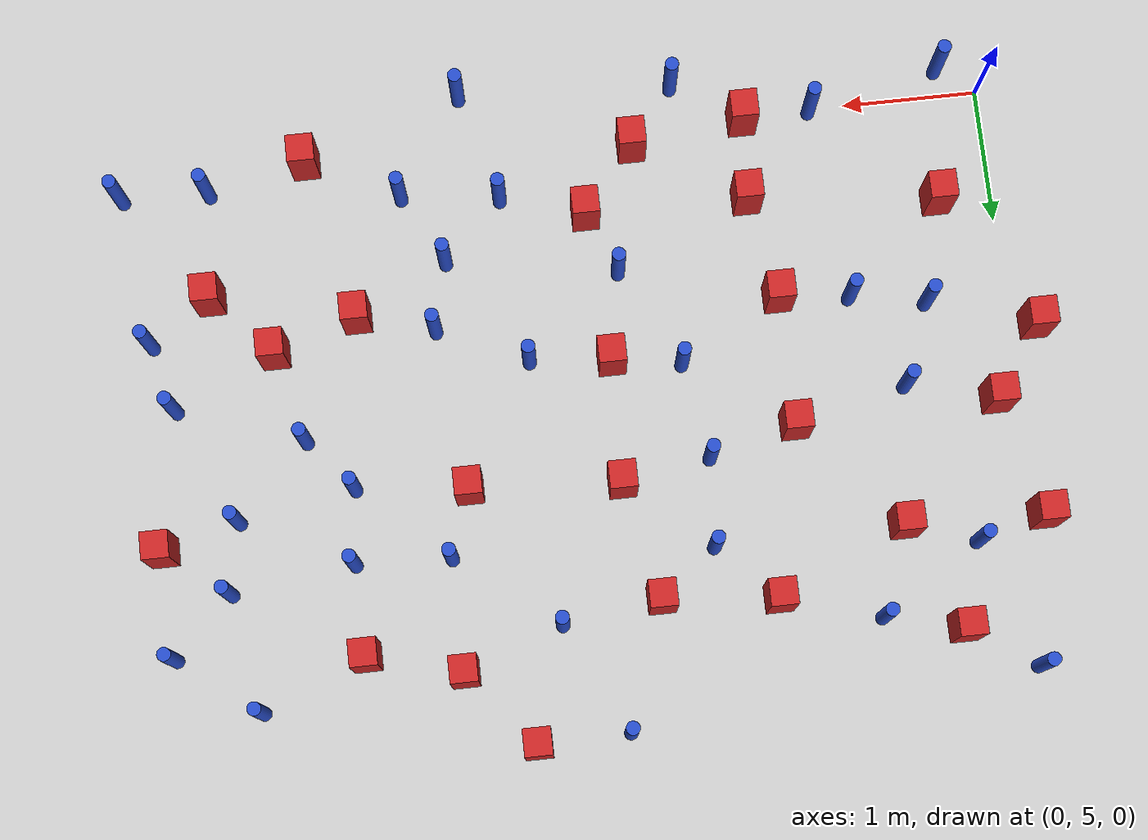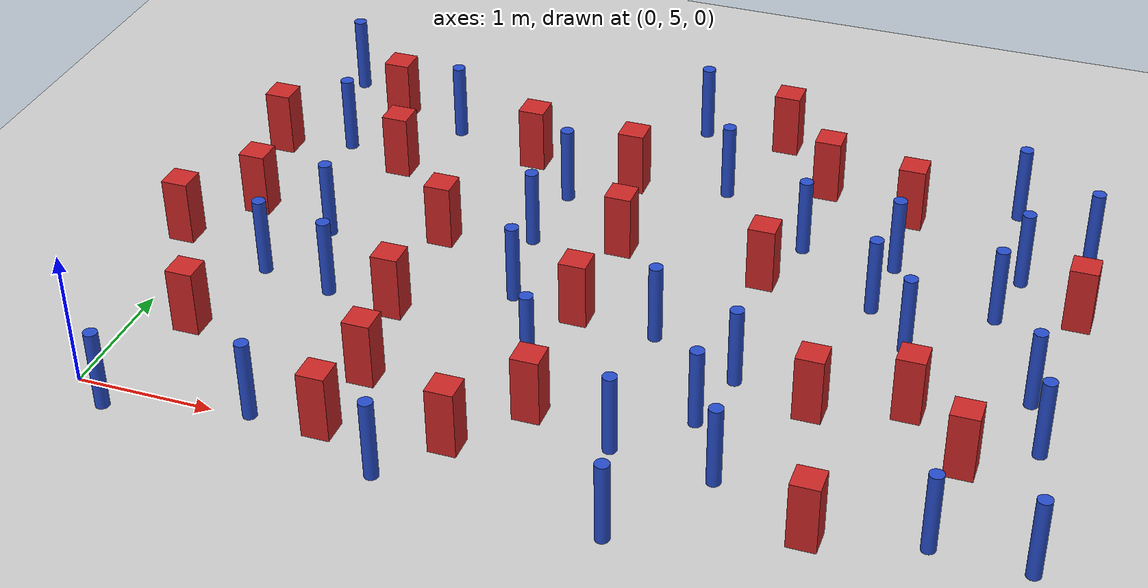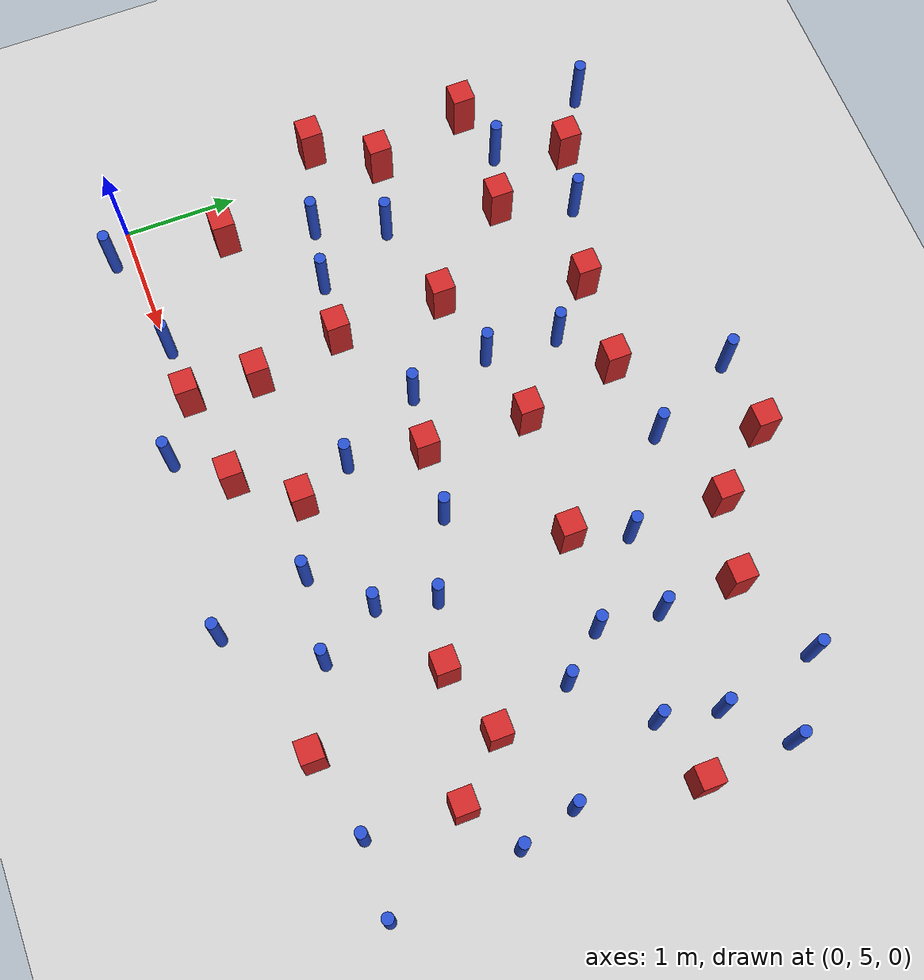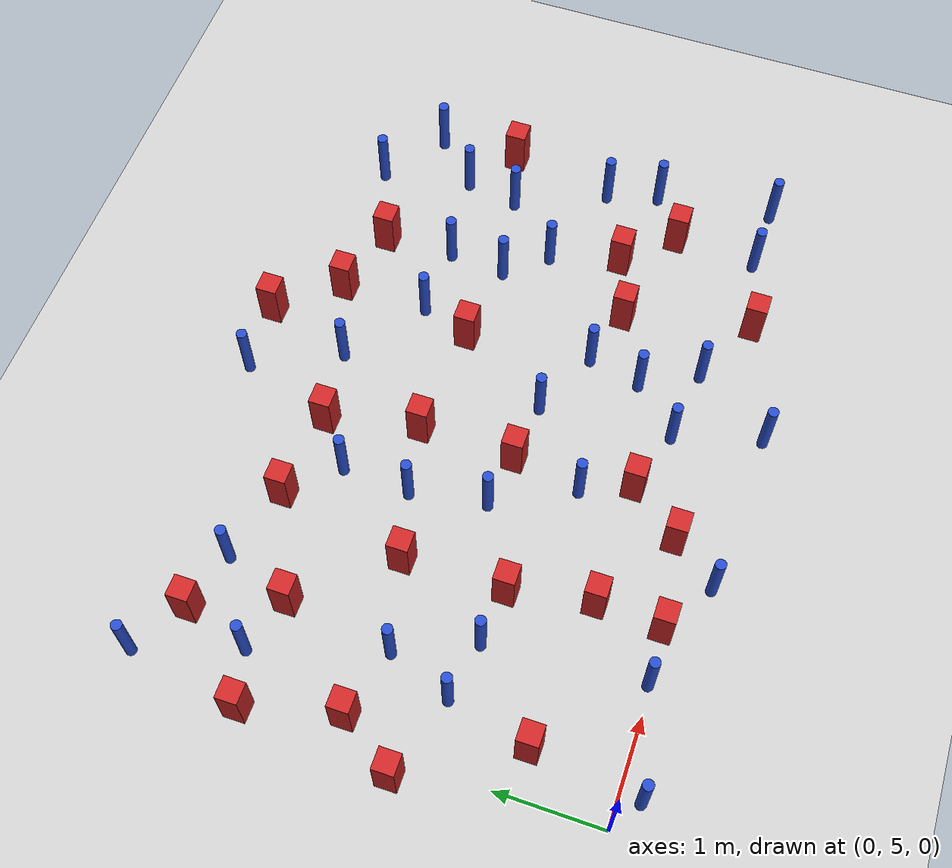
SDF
<sdf version="1.6">
 <world name="default">
  <model name="ground_plane">
   <static>1</static>
   <link name="link">
    <collision name="collision">
     <geometry><plane><normal>0 0 1</normal><size>100 100</size></plane></geometry>
     <surface><friction><ode><mu>100</mu><mu2>50</mu2></ode></friction></surface>
    </collision>
    <visual name="visual">
     <cast_shadows>0</cast_shadows>
     <geometry><plane><normal>0 0 1</normal><size>100 100</size></plane></geometry>
     <material>
      <ambient>1.0 1.0 1.0 1.0</ambient>
      <diffuse>0.8 0.8 0.8 1.0</diffuse>
      <specular>0.01 0.01 0.01 1.000000</specular>
     </material>
    </visual>
   </link>
  </model>
  <model name="square_post_obstacle3">
   <static>true</static>
   <pose>1.82077374307 5.66131599917 8.22691968438e-08 7.2212513382e-06 -7.54495500217e-07 2.29674213826e-05</pose>
   <link name="link">
    <pose>0 0 0.25 0 -0 0</pose>
    <inertial>
     <mass>100</mass>
     <inertia>
      <ixx>0.166667</ixx>
      <ixy>0</ixy>
      <ixz>0</ixz>
      <iyy>0.166667</iyy>
      <iyz>0</iyz>
      <izz>0.166667</izz>
     </inertia>
    </inertial>
    <collision name="collision"><geometry><box><size>.2 .2 .5</size></box></geometry></collision>
    <visual name="visual">
     <geometry><box><size>.2 .2 .5</size></box></geometry>
     <material>
      <script><name>Gazebo/Red</name><uri>file://media/materials/scripts/gazebo.material</uri></script>
     </material>
    </visual>
   </link>
  </model>
  <model name="pole_obstacle12">
   <static>true</static>
   <pose>2.28259964185 4.73559105646 2.88873142074e-08 -9.90536689859e-09 4.60219948989e-07 -1.20965994961e-07</pose>
   <link name="link">
    <pose>0 0 0.3 0 -0 0</pose>
    <inertial>
     <mass>1</mass>
     <inertia><ixx>0.145833</ixx><ixy>0</ixy><ixz>0</ixz><iyy>0.145833</iyy><iyz>0</iyz><izz>0.125</izz></inertia>
    </inertial>
    <collision name="collision">
     <geometry><cylinder><radius>0.05</radius><length>.6</length></cylinder></geometry>
    </collision>
    <visual name="visual">
     <geometry><cylinder><radius>0.05</radius><length>.6</length></cylinder></geometry>
     <material>
      <script><name>Gazebo/Blue</name><uri>file://media/materials/scripts/gazebo.material</uri></script>
     </material>
    </visual>
   </link>
  </model>
  <model name="square_post_obstacle8">
   <static>true</static>
   <pose>1.7828839494 5.05060380891 8.22691968438e-08 7.2212513382e-06 -7.54495500217e-07 2.29674213826e-05</pose>
   <link name="link">
    <pose>0 0 0.25 0 -0 0</pose>
    <inertial>
     <mass>100</mass>
     <inertia>
      <ixx>0.166667</ixx>
      <ixy>0</ixy>
      <ixz>0</ixz>
      <iyy>0.166667</iyy>
      <iyz>0</iyz>
      <izz>0.166667</izz>
     </inertia>
    </inertial>
    <collision name="collision"><geometry><box><size>.2 .2 .5</size></box></geometry></collision>
    <visual name="visual">
     <geometry><box><size>.2 .2 .5</size></box></geometry>
     <material>
      <script><name>Gazebo/Red</name><uri>file://media/materials/scripts/gazebo.material</uri></script>
     </material>
    </visual>
   </link>
  </model>
  <model name="pole_obstacle17">
   <static>true</static>
   <pose>0.289858138714 4.8147940718 2.88873142074e-08 -9.90536689592e-09 4.60219948995e-07 -1.20965994956e-07</pose>
   <link name="link">
    <pose>0 0 0.3 0 -0 0</pose>
    <inertial>
     <mass>1</mass>
     <inertia><ixx>0.145833</ixx><ixy>0</ixy><ixz>0</ixz><iyy>0.145833</iyy><iyz>0</iyz><izz>0.125</izz></inertia>
    </inertial>
    <collision name="collision">
     <geometry><cylinder><radius>0.05</radius><length>.6</length></cylinder></geometry>
    </collision>
    <visual name="visual">
     <geometry><cylinder><radius>0.05</radius><length>.6</length></cylinder></geometry>
     <material>
      <script><name>Gazebo/Blue</name><uri>file://media/materials/scripts/gazebo.material</uri></script>
     </material>
    </visual>
   </link>
  </model>
  <model name="pole_obstacle25">
   <static>true</static>
   <pose>4.3619809951 5.37971459216 2.88873142074e-08 -9.90536690842e-09 4.60219948965e-07 -1.20965994976e-07</pose>
   <link name="link">
    <pose>0 0 0.3 0 -0 0</pose>
    <inertial>
     <mass>1</mass>
     <inertia><ixx>0.145833</ixx><ixy>0</ixy><ixz>0</ixz><iyy>0.145833</iyy><iyz>0</iyz><izz>0.125</izz></inertia>
    </inertial>
    <collision name="collision">
     <geometry><cylinder><radius>0.05</radius><length>.6</length></cylinder></geometry>
    </collision>
    <visual name="visual">
     <geometry><cylinder><radius>0.05</radius><length>.6</length></cylinder></geometry>
     <material>
      <script><name>Gazebo/Blue</name><uri>file://media/materials/scripts/gazebo.material</uri></script>
     </material>
    </visual>
   </link>
  </model>
  <model name="pole_obstacle26">
   <static>true</static>
   <pose>2.43557641112 6.85372961977 2.88873142074e-08 -9.90536689859e-09 4.60219948989e-07 -1.20965994961e-07</pose>
   <link name="link">
    <pose>0 0 0.3 0 -0 0</pose>
    <inertial>
     <mass>1</mass>
     <inertia><ixx>0.145833</ixx><ixy>0</ixy><ixz>0</ixz><iyy>0.145833</iyy><iyz>0</iyz><izz>0.125</izz></inertia>
    </inertial>
    <collision name="collision">
     <geometry><cylinder><radius>0.05</radius><length>.6</length></cylinder></geometry>
    </collision>
    <visual name="visual">
     <geometry><cylinder><radius>0.05</radius><length>.6</length></cylinder></geometry>
     <material>
      <script><name>Gazebo/Blue</name><uri>file://media/materials/scripts/gazebo.material</uri></script>
     </material>
    </visual>
   </link>
  </model>
  <model name="square_post_obstacle26">
   <static>true</static>
   <pose>-0.16919677397 6.82453073051 8.22691968438e-08 7.22125133819e-06 -7.54495500217e-07 2.29674213826e-05</pose>
   <link name="link">
    <pose>0 0 0.25 0 -0 0</pose>
    <inertial>
     <mass>100</mass>
     <inertia>
      <ixx>0.166667</ixx>
      <ixy>0</ixy>
      <ixz>0</ixz>
      <iyy>0.166667</iyy>
      <iyz>0</iyz>
      <izz>0.166667</izz>
     </inertia>
    </inertial>
    <collision name="collision"><geometry><box><size>.2 .2 .5</size></box></geometry></collision>
    <visual name="visual">
     <geometry><box><size>.2 .2 .5</size></box></geometry>
     <material>
      <script><name>Gazebo/Red</name><uri>file://media/materials/scripts/gazebo.material</uri></script>
     </material>
    </visual>
   </link>
  </model>
  <model name="square_post_obstacle27">
   <static>true</static>
   <pose>-0.0322650848351 8.22981169189 8.22691968438e-08 7.22125133819e-06 -7.54495500217e-07 2.29674213826e-05</pose>
   <link name="link">
    <pose>0 0 0.25 0 -0 0</pose>
    <inertial>
     <mass>100</mass>
     <inertia>
      <ixx>0.166667</ixx>
      <ixy>0</ixy>
      <ixz>0</ixz>
      <iyy>0.166667</iyy>
      <iyz>0</iyz>
      <izz>0.166667</izz>
     </inertia>
    </inertial>
    <collision name="collision"><geometry><box><size>.2 .2 .5</size></box></geometry></collision>
    <visual name="visual">
     <geometry><box><size>.2 .2 .5</size></box></geometry>
     <material>
      <script><name>Gazebo/Red</name><uri>file://media/materials/scripts/gazebo.material</uri></script>
     </material>
    </visual>
   </link>
  </model>
  <model name="pole_obstacle37">
   <static>true</static>
   <pose>3.09776641111 9.47160394586 2.88873142074e-08 -9.90536692318e-09 4.6021994893e-07 -1.20965994988e-07</pose>
   <link name="link">
    <pose>0 0 0.3 0 -0 0</pose>
    <inertial>
     <mass>1</mass>
     <inertia><ixx>0.145833</ixx><ixy>0</ixy><ixz>0</ixz><iyy>0.145833</iyy><iyz>0</iyz><izz>0.125</izz></inertia>
    </inertial>
    <collision name="collision">
     <geometry><cylinder><radius>0.05</radius><length>.6</length></cylinder></geometry>
    </collision>
    <visual name="visual">
     <geometry><cylinder><radius>0.05</radius><length>.6</length></cylinder></geometry>
     <material>
      <script><name>Gazebo/Blue</name><uri>file://media/materials/scripts/gazebo.material</uri></script>
     </material>
    </visual>
   </link>
  </model>
  <model name="pole_obstacle45">
   <static>true</static>
   <pose>2.82369901058 6.1157636126 2.88873142074e-08 -9.90536689859e-09 4.60219948989e-07 -1.20965994961e-07</pose>
   <link name="link">
    <pose>0 0 0.3 0 -0 0</pose>
    <inertial>
     <mass>1</mass>
     <inertia><ixx>0.145833</ixx><ixy>0</ixy><ixz>0</ixz><iyy>0.145833</iyy><iyz>0</iyz><izz>0.125</izz></inertia>
    </inertial>
    <collision name="collision">
     <geometry><cylinder><radius>0.05</radius><length>.6</length></cylinder></geometry>
    </collision>
    <visual name="visual">
     <geometry><cylinder><radius>0.05</radius><length>.6</length></cylinder></geometry>
     <material>
      <script><name>Gazebo/Blue</name><uri>file://media/materials/scripts/gazebo.material</uri></script>
     </material>
    </visual>
   </link>
  </model>
  <model name="pole_obstacle48">
   <static>true</static>
   <pose>0.463404609247 8.37738642801 2.88873142074e-08 -9.90536690577e-09 4.60219948971e-07 -1.20965994972e-07</pose>
   <link name="link">
    <pose>0 0 0.3 0 -0 0</pose>
    <inertial>
     <mass>1</mass>
     <inertia><ixx>0.145833</ixx><ixy>0</ixy><ixz>0</ixz><iyy>0.145833</iyy><iyz>0</iyz><izz>0.125</izz></inertia>
    </inertial>
    <collision name="collision">
     <geometry><cylinder><radius>0.05</radius><length>.6</length></cylinder></geometry>
    </collision>
    <visual name="visual">
     <geometry><cylinder><radius>0.05</radius><length>.6</length></cylinder></geometry>
     <material>
      <script><name>Gazebo/Blue</name><uri>file://media/materials/scripts/gazebo.material</uri></script>
     </material>
    </visual>
   </link>
  </model>
  <model name="square_post_obstacle44">
   <static>true</static>
   <pose>4.91162116336 8.7408284496 8.22691968438e-08 7.22125133819e-06 -7.54495500217e-07 2.29674213826e-05</pose>
   <link name="link">
    <pose>0 0 0.25 0 -0 0</pose>
    <inertial>
     <mass>100</mass>
     <inertia>
      <ixx>0.166667</ixx>
      <ixy>0</ixy>
      <ixz>0</ixz>
      <iyy>0.166667</iyy>
      <iyz>0</iyz>
      <izz>0.166667</izz>
     </inertia>
    </inertial>
    <collision name="collision"><geometry><box><size>.2 .2 .5</size></box></geometry></collision>
    <visual name="visual">
     <geometry><box><size>.2 .2 .5</size></box></geometry>
     <material>
      <script><name>Gazebo/Red</name><uri>file://media/materials/scripts/gazebo.material</uri></script>
     </material>
    </visual>
   </link>
  </model>
  <model name="pole_obstacle59">
   <static>true</static>
   <pose>5.74285841394 7.68002146907 2.88873142074e-08 -9.90536690842e-09 4.60219948965e-07 -1.20965994976e-07</pose>
   <link name="link">
    <pose>0 0 0.3 0 -0 0</pose>
    <inertial>
     <mass>1</mass>
     <inertia><ixx>0.145833</ixx><ixy>0</ixy><ixz>0</ixz><iyy>0.145833</iyy><iyz>0</iyz><izz>0.125</izz></inertia>
    </inertial>
    <collision name="collision">
     <geometry><cylinder><radius>0.05</radius><length>.6</length></cylinder></geometry>
    </collision>
    <visual name="visual">
     <geometry><cylinder><radius>0.05</radius><length>.6</length></cylinder></geometry>
     <material>
      <script><name>Gazebo/Blue</name><uri>file://media/materials/scripts/gazebo.material</uri></script>
     </material>
    </visual>
   </link>
  </model>
  <model name="square_post_obstacle50">
   <static>true</static>
   <pose>0.420360315031 5.81374325096 8.22691968438e-08 7.2212513382e-06 -7.54495500217e-07 2.29674213826e-05</pose>
   <link name="link">
    <pose>0 0 0.25 0 -0 0</pose>
    <inertial>
     <mass>100</mass>
     <inertia>
      <ixx>0.166667</ixx>
      <ixy>0</ixy>
      <ixz>0</ixz>
      <iyy>0.166667</iyy>
      <iyz>0</iyz>
      <izz>0.166667</izz>
     </inertia>
    </inertial>
    <collision name="collision"><geometry><box><size>.2 .2 .5</size></box></geometry></collision>
    <visual name="visual">
     <geometry><box><size>.2 .2 .5</size></box></geometry>
     <material>
      <script><name>Gazebo/Red</name><uri>file://media/materials/scripts/gazebo.material</uri></script>
     </material>
    </visual>
   </link>
  </model>
  <model name="square_post_obstacle57">
   <static>true</static>
   <pose>5.82065336989 6.00877035297 8.22691968438e-08 7.2212513382e-06 -7.54495500217e-07 2.29674213826e-05</pose>
   <link name="link">
    <pose>0 0 0.25 0 -0 0</pose>
    <inertial>
     <mass>100</mass>
     <inertia>
      <ixx>0.166667</ixx>
      <ixy>0</ixy>
      <ixz>0</ixz>
      <iyy>0.166667</iyy>
      <iyz>0</iyz>
      <izz>0.166667</izz>
     </inertia>
    </inertial>
    <collision name="collision"><geometry><box><size>.2 .2 .5</size></box></geometry></collision>
    <visual name="visual">
     <geometry><box><size>.2 .2 .5</size></box></geometry>
     <material>
      <script><name>Gazebo/Red</name><uri>file://media/materials/scripts/gazebo.material</uri></script>
     </material>
    </visual>
   </link>
  </model>
  <model name="square_post_obstacle61">
   <static>true</static>
   <pose>1.67341535699 7.39044430447 8.22691968438e-08 7.2212513382e-06 -7.54495500217e-07 2.29674213826e-05</pose>
   <link name="link">
    <pose>0 0 0.25 0 -0 0</pose>
    <inertial>
     <mass>100</mass>
     <inertia>
      <ixx>0.166667</ixx>
      <ixy>0</ixy>
      <ixz>0</ixz>
      <iyy>0.166667</iyy>
      <iyz>0</iyz>
      <izz>0.166667</izz>
     </inertia>
    </inertial>
    <collision name="collision"><geometry><box><size>.2 .2 .5</size></box></geometry></collision>
    <visual name="visual">
     <geometry><box><size>.2 .2 .5</size></box></geometry>
     <material>
      <script><name>Gazebo/Red</name><uri>file://media/materials/scripts/gazebo.material</uri></script>
     </material>
    </visual>
   </link>
  </model>
  <model name="square_post_obstacle64">
   <static>true</static>
   <pose>1.68036831569 6.42983674142 8.22691968438e-08 7.2212513382e-06 -7.54495500217e-07 2.29674213826e-05</pose>
   <link name="link">
    <pose>0 0 0.25 0 -0 0</pose>
    <inertial>
     <mass>100</mass>
     <inertia>
      <ixx>0.166667</ixx>
      <ixy>0</ixy>
      <ixz>0</ixz>
      <iyy>0.166667</iyy>
      <iyz>0</iyz>
      <izz>0.166667</izz>
     </inertia>
    </inertial>
    <collision name="collision"><geometry><box><size>.2 .2 .5</size></box></geometry></collision>
    <visual name="visual">
     <geometry><box><size>.2 .2 .5</size></box></geometry>
     <material>
      <script><name>Gazebo/Red</name><uri>file://media/materials/scripts/gazebo.material</uri></script>
     </material>
    </visual>
   </link>
  </model>
  <model name="pole_obstacle77">
   <static>true</static>
   <pose>5.21128335638 7.14167237031 2.88873142074e-08 -9.90536690842e-09 4.60219948965e-07 -1.20965994976e-07</pose>
   <link name="link">
    <pose>0 0 0.3 0 -0 0</pose>
    <inertial>
     <mass>1</mass>
     <inertia><ixx>0.145833</ixx><ixy>0</ixy><ixz>0</ixz><iyy>0.145833</iyy><iyz>0</iyz><izz>0.125</izz></inertia>
    </inertial>
    <collision name="collision">
     <geometry><cylinder><radius>0.05</radius><length>.6</length></cylinder></geometry>
    </collision>
    <visual name="visual">
     <geometry><cylinder><radius>0.05</radius><length>.6</length></cylinder></geometry>
     <material>
      <script><name>Gazebo/Blue</name><uri>file://media/materials/scripts/gazebo.material</uri></script>
     </material>
    </visual>
   </link>
  </model>
  <model name="pole_obstacle79">
   <static>true</static>
   <pose>3.54056623691 6.71663281864 2.88873142074e-08 -9.90536689859e-09 4.60219948989e-07 -1.20965994961e-07</pose>
   <link name="link">
    <pose>0 0 0.3 0 -0 0</pose>
    <inertial>
     <mass>1</mass>
     <inertia><ixx>0.145833</ixx><ixy>0</ixy><ixz>0</ixz><iyy>0.145833</iyy><iyz>0</iyz><izz>0.125</izz></inertia>
    </inertial>
    <collision name="collision">
     <geometry><cylinder><radius>0.05</radius><length>.6</length></cylinder></geometry>
    </collision>
    <visual name="visual">
     <geometry><cylinder><radius>0.05</radius><length>.6</length></cylinder></geometry>
     <material>
      <script><name>Gazebo/Blue</name><uri>file://media/materials/scripts/gazebo.material</uri></script>
     </material>
    </visual>
   </link>
  </model>
  <model name="pole_obstacle81">
   <static>true</static>
   <pose>4.88968393621 7.52551218049 2.88873142074e-08 -9.90536690842e-09 4.60219948965e-07 -1.20965994976e-07</pose>
   <link name="link">
    <pose>0 0 0.3 0 -0 0</pose>
    <inertial>
     <mass>1</mass>
     <inertia><ixx>0.145833</ixx><ixy>0</ixy><ixz>0</ixz><iyy>0.145833</iyy><iyz>0</iyz><izz>0.125</izz></inertia>
    </inertial>
    <collision name="collision">
     <geometry><cylinder><radius>0.05</radius><length>.6</length></cylinder></geometry>
    </collision>
    <visual name="visual">
     <geometry><cylinder><radius>0.05</radius><length>.6</length></cylinder></geometry>
     <material>
      <script><name>Gazebo/Blue</name><uri>file://media/materials/scripts/gazebo.material</uri></script>
     </material>
    </visual>
   </link>
  </model>
  <model name="pole_obstacle88">
   <static>true</static>
   <pose>4.24070013737 8.10362296016 2.88873142074e-08 -9.9053668967e-09 4.60219948993e-07 -1.20965994957e-07</pose>
   <link name="link">
    <pose>0 0 0.3 0 -0 0</pose>
    <inertial>
     <mass>1</mass>
     <inertia><ixx>0.145833</ixx><ixy>0</ixy><ixz>0</ixz><iyy>0.145833</iyy><iyz>0</iyz><izz>0.125</izz></inertia>
    </inertial>
    <collision name="collision">
     <geometry><cylinder><radius>0.05</radius><length>.6</length></cylinder></geometry>
    </collision>
    <visual name="visual">
     <geometry><cylinder><radius>0.05</radius><length>.6</length></cylinder></geometry>
     <material>
      <script><name>Gazebo/Blue</name><uri>file://media/materials/scripts/gazebo.material</uri></script>
     </material>
    </visual>
   </link>
  </model>
  <model name="square_post_obstacle76">
   <static>true</static>
   <pose>0.190632733114 7.34963433022 8.22691968438e-08 7.2212513382e-06 -7.54495500217e-07 2.29674213826e-05</pose>
   <link name="link">
    <pose>0 0 0.25 0 -0 0</pose>
    <inertial>
     <mass>100</mass>
     <inertia>
      <ixx>0.166667</ixx>
      <ixy>0</ixy>
      <ixz>0</ixz>
      <iyy>0.166667</iyy>
      <iyz>0</iyz>
      <izz>0.166667</izz>
     </inertia>
    </inertial>
    <collision name="collision"><geometry><box><size>.2 .2 .5</size></box></geometry></collision>
    <visual name="visual">
     <geometry><box><size>.2 .2 .5</size></box></geometry>
     <material>
      <script><name>Gazebo/Red</name><uri>file://media/materials/scripts/gazebo.material</uri></script>
     </material>
    </visual>
   </link>
  </model>
  <model name="pole_obstacle92">
   <static>true</static>
   <pose>3.86695115488 4.65204683523 2.88873142074e-08 -9.90536689859e-09 4.60219948989e-07 -1.20965994961e-07</pose>
   <link name="link">
    <pose>0 0 0.3 0 -0 0</pose>
    <inertial>
     <mass>1</mass>
     <inertia><ixx>0.145833</ixx><ixy>0</ixy><ixz>0</ixz><iyy>0.145833</iyy><iyz>0</iyz><izz>0.125</izz></inertia>
    </inertial>
    <collision name="collision">
     <geometry><cylinder><radius>0.05</radius><length>.6</length></cylinder></geometry>
    </collision>
    <visual name="visual">
     <geometry><cylinder><radius>0.05</radius><length>.6</length></cylinder></geometry>
     <material>
      <script><name>Gazebo/Blue</name><uri>file://media/materials/scripts/gazebo.material</uri></script>
     </material>
    </visual>
   </link>
  </model>
  <model name="pole_obstacle95">
   <static>true</static>
   <pose>4.93724735003 8.0736629057 2.88873142074e-08 -9.9053668967e-09 4.60219948993e-07 -1.20965994957e-07</pose>
   <link name="link">
    <pose>0 0 0.3 0 -0 0</pose>
    <inertial>
     <mass>1</mass>
     <inertia><ixx>0.145833</ixx><ixy>0</ixy><ixz>0</ixz><iyy>0.145833</iyy><iyz>0</iyz><izz>0.125</izz></inertia>
    </inertial>
    <collision name="collision">
     <geometry><cylinder><radius>0.05</radius><length>.6</length></cylinder></geometry>
    </collision>
    <visual name="visual">
     <geometry><cylinder><radius>0.05</radius><length>.6</length></cylinder></geometry>
     <material>
      <script><name>Gazebo/Blue</name><uri>file://media/materials/scripts/gazebo.material</uri></script>
     </material>
    </visual>
   </link>
  </model>
  <model name="pole_obstacle98">
   <static>true</static>
   <pose>6.27613321627 6.31601484396 2.88873142074e-08 -9.90536690842e-09 4.60219948965e-07 -1.20965994976e-07</pose>
   <link name="link">
    <pose>0 0 0.3 0 -0 0</pose>
    <inertial>
     <mass>1</mass>
     <inertia><ixx>0.145833</ixx><ixy>0</ixy><ixz>0</ixz><iyy>0.145833</iyy><iyz>0</iyz><izz>0.125</izz></inertia>
    </inertial>
    <collision name="collision">
     <geometry><cylinder><radius>0.05</radius><length>.6</length></cylinder></geometry>
    </collision>
    <visual name="visual">
     <geometry><cylinder><radius>0.05</radius><length>.6</length></cylinder></geometry>
     <material>
      <script><name>Gazebo/Blue</name><uri>file://media/materials/scripts/gazebo.material</uri></script>
     </material>
    </visual>
   </link>
  </model>
  <model name="pole_obstacle99">
   <static>true</static>
   <pose>1.1553882232 6.48643237651 2.88873142074e-08 -9.90536689852e-09 4.60219948989e-07 -1.2096599496e-07</pose>
   <link name="link">
    <pose>0 0 0.3 0 -0 0</pose>
    <inertial>
     <mass>1</mass>
     <inertia><ixx>0.145833</ixx><ixy>0</ixy><ixz>0</ixz><iyy>0.145833</iyy><iyz>0</iyz><izz>0.125</izz></inertia>
    </inertial>
    <collision name="collision">
     <geometry><cylinder><radius>0.05</radius><length>.6</length></cylinder></geometry>
    </collision>
    <visual name="visual">
     <geometry><cylinder><radius>0.05</radius><length>.6</length></cylinder></geometry>
     <material>
      <script><name>Gazebo/Blue</name><uri>file://media/materials/scripts/gazebo.material</uri></script>
     </material>
    </visual>
   </link>
  </model>
  <model name="square_post_obstacle96">
   <static>true</static>
   <pose>5.04254001084 5.04284052013 8.22691968438e-08 7.2212513382e-06 -7.54495500217e-07 2.29674213826e-05</pose>
   <link name="link">
    <pose>0 0 0.25 0 -0 0</pose>
    <inertial>
     <mass>100</mass>
     <inertia>
      <ixx>0.166667</ixx>
      <ixy>0</ixy>
      <ixz>0</ixz>
      <iyy>0.166667</iyy>
      <iyz>0</iyz>
      <izz>0.166667</izz>
     </inertia>
    </inertial>
    <collision name="collision"><geometry><box><size>.2 .2 .5</size></box></geometry></collision>
    <visual name="visual">
     <geometry><box><size>.2 .2 .5</size></box></geometry>
     <material>
      <script><name>Gazebo/Red</name><uri>file://media/materials/scripts/gazebo.material</uri></script>
     </material>
    </visual>
   </link>
  </model>
  <model name="square_post_obstacle101">
   <static>true</static>
   <pose>0.652421129036 8.98227646289 8.22691968438e-08 7.22125133819e-06 -7.54495500217e-07 2.29674213826e-05</pose>
   <link name="link">
    <pose>0 0 0.25 0 -0 0</pose>
    <inertial>
     <mass>100</mass>
     <inertia>
      <ixx>0.166667</ixx>
      <ixy>0</ixy>
      <ixz>0</ixz>
      <iyy>0.166667</iyy>
      <iyz>0</iyz>
      <izz>0.166667</izz>
     </inertia>
    </inertial>
    <collision name="collision"><geometry><box><size>.2 .2 .5</size></box></geometry></collision>
    <visual name="visual">
     <geometry><box><size>.2 .2 .5</size></box></geometry>
     <material>
      <script><name>Gazebo/Red</name><uri>file://media/materials/scripts/gazebo.material</uri></script>
     </material>
    </visual>
   </link>
  </model>
  <model name="pole_obstacle109">
   <static>true</static>
   <pose>2.31280029879 7.56984160266 2.88873142074e-08 -9.90536689859e-09 4.60219948989e-07 -1.20965994961e-07</pose>
   <link name="link">
    <pose>0 0 0.3 0 -0 0</pose>
    <inertial>
     <mass>1</mass>
     <inertia><ixx>0.145833</ixx><ixy>0</ixy><ixz>0</ixz><iyy>0.145833</iyy><iyz>0</iyz><izz>0.125</izz></inertia>
    </inertial>
    <collision name="collision">
     <geometry><cylinder><radius>0.05</radius><length>.6</length></cylinder></geometry>
    </collision>
    <visual name="visual">
     <geometry><cylinder><radius>0.05</radius><length>.6</length></cylinder></geometry>
     <material>
      <script><name>Gazebo/Blue</name><uri>file://media/materials/scripts/gazebo.material</uri></script>
     </material>
    </visual>
   </link>
  </model>
  <model name="square_post_obstacle104">
   <static>true</static>
   <pose>4.76239928698 6.25869480802 8.22691968438e-08 7.2212513382e-06 -7.54495500217e-07 2.29674213826e-05</pose>
   <link name="link">
    <pose>0 0 0.25 0 -0 0</pose>
    <inertial>
     <mass>100</mass>
     <inertia>
      <ixx>0.166667</ixx>
      <ixy>0</ixy>
      <ixz>0</ixz>
      <iyy>0.166667</iyy>
      <iyz>0</iyz>
      <izz>0.166667</izz>
     </inertia>
    </inertial>
    <collision name="collision"><geometry><box><size>.2 .2 .5</size></box></geometry></collision>
    <visual name="visual">
     <geometry><box><size>.2 .2 .5</size></box></geometry>
     <material>
      <script><name>Gazebo/Red</name><uri>file://media/materials/scripts/gazebo.material</uri></script>
     </material>
    </visual>
   </link>
  </model>
  <model name="square_post_obstacle107">
   <static>true</static>
   <pose>2.96732174559 7.68465561499 8.22691968438e-08 7.2212513382e-06 -7.54495500217e-07 2.29674213826e-05</pose>
   <link name="link">
    <pose>0 0 0.25 0 -0 0</pose>
    <inertial>
     <mass>100</mass>
     <inertia>
      <ixx>0.166667</ixx>
      <ixy>0</ixy>
      <ixz>0</ixz>
      <iyy>0.166667</iyy>
      <iyz>0</iyz>
      <izz>0.166667</izz>
     </inertia>
    </inertial>
    <collision name="collision"><geometry><box><size>.2 .2 .5</size></box></geometry></collision>
    <visual name="visual">
     <geometry><box><size>.2 .2 .5</size></box></geometry>
     <material>
      <script><name>Gazebo/Red</name><uri>file://media/materials/scripts/gazebo.material</uri></script>
     </material>
    </visual>
   </link>
  </model>
  <model name="square_post_obstacle116">
   <static>true</static>
   <pose>2.77990372139 8.5521429668 8.22691968438e-08 7.22125133819e-06 -7.54495500217e-07 2.29674213826e-05</pose>
   <link name="link">
    <pose>0 0 0.25 0 -0 0</pose>
    <inertial>
     <mass>100</mass>
     <inertia>
      <ixx>0.166667</ixx>
      <ixy>0</ixy>
      <ixz>0</ixz>
      <iyy>0.166667</iyy>
      <iyz>0</iyz>
      <izz>0.166667</izz>
     </inertia>
    </inertial>
    <collision name="collision"><geometry><box><size>.2 .2 .5</size></box></geometry></collision>
    <visual name="visual">
     <geometry><box><size>.2 .2 .5</size></box></geometry>
     <material>
      <script><name>Gazebo/Red</name><uri>file://media/materials/scripts/gazebo.material</uri></script>
     </material>
    </visual>
   </link>
  </model>
  <model name="pole_obstacle125">
   <static>true</static>
   <pose>3.63541232629 5.46911626606 2.88873142074e-08 -9.90536689859e-09 4.60219948989e-07 -1.20965994961e-07</pose>
   <link name="link">
    <pose>0 0 0.3 0 -0 0</pose>
    <inertial>
     <mass>1</mass>
     <inertia><ixx>0.145833</ixx><ixy>0</ixy><ixz>0</ixz><iyy>0.145833</iyy><iyz>0</iyz><izz>0.125</izz></inertia>
    </inertial>
    <collision name="collision">
     <geometry><cylinder><radius>0.05</radius><length>.6</length></cylinder></geometry>
    </collision>
    <visual name="visual">
     <geometry><cylinder><radius>0.05</radius><length>.6</length></cylinder></geometry>
     <material>
      <script><name>Gazebo/Blue</name><uri>file://media/materials/scripts/gazebo.material</uri></script>
     </material>
    </visual>
   </link>
  </model>
  <model name="pole_obstacle128">
   <static>true</static>
   <pose>5.83881600438 8.19514445258 2.88873142074e-08 -9.9053668967e-09 4.60219948993e-07 -1.20965994957e-07</pose>
   <link name="link">
    <pose>0 0 0.3 0 -0 0</pose>
    <inertial>
     <mass>1</mass>
     <inertia><ixx>0.145833</ixx><ixy>0</ixy><ixz>0</ixz><iyy>0.145833</iyy><iyz>0</iyz><izz>0.125</izz></inertia>
    </inertial>
    <collision name="collision">
     <geometry><cylinder><radius>0.05</radius><length>.6</length></cylinder></geometry>
    </collision>
    <visual name="visual">
     <geometry><cylinder><radius>0.05</radius><length>.6</length></cylinder></geometry>
     <material>
      <script><name>Gazebo/Blue</name><uri>file://media/materials/scripts/gazebo.material</uri></script>
     </material>
    </visual>
   </link>
  </model>
  <model name="square_post_obstacle125">
   <static>true</static>
   <pose>4.06768812596 7.61288188697 8.22691968438e-08 7.2212513382e-06 -7.54495500217e-07 2.29674213826e-05</pose>
   <link name="link">
    <pose>0 0 0.25 0 -0 0</pose>
    <inertial>
     <mass>100</mass>
     <inertia>
      <ixx>0.166667</ixx>
      <ixy>0</ixy>
      <ixz>0</ixz>
      <iyy>0.166667</iyy>
      <iyz>0</iyz>
      <izz>0.166667</izz>
     </inertia>
    </inertial>
    <collision name="collision"><geometry><box><size>.2 .2 .5</size></box></geometry></collision>
    <visual name="visual">
     <geometry><box><size>.2 .2 .5</size></box></geometry>
     <material>
      <script><name>Gazebo/Red</name><uri>file://media/materials/scripts/gazebo.material</uri></script>
     </material>
    </visual>
   </link>
  </model>
  <model name="pole_obstacle138">
   <static>true</static>
   <pose>0.602387837777 6.58760974611 2.88873142074e-08 -9.90536689661e-09 4.60219948993e-07 -1.20965994957e-07</pose>
   <link name="link">
    <pose>0 0 0.3 0 -0 0</pose>
    <inertial>
     <mass>1</mass>
     <inertia><ixx>0.145833</ixx><ixy>0</ixy><ixz>0</ixz><iyy>0.145833</iyy><iyz>0</iyz><izz>0.125</izz></inertia>
    </inertial>
    <collision name="collision">
     <geometry><cylinder><radius>0.05</radius><length>.6</length></cylinder></geometry>
    </collision>
    <visual name="visual">
     <geometry><cylinder><radius>0.05</radius><length>.6</length></cylinder></geometry>
     <material>
      <script><name>Gazebo/Blue</name><uri>file://media/materials/scripts/gazebo.material</uri></script>
     </material>
    </visual>
   </link>
  </model>
  <model name="square_post_obstacle136">
   <static>true</static>
   <pose>5.38303172067 6.46255604484 8.22691968438e-08 7.2212513382e-06 -7.54495500217e-07 2.29674213826e-05</pose>
   <link name="link">
    <pose>0 0 0.25 0 -0 0</pose>
    <inertial>
     <mass>100</mass>
     <inertia>
      <ixx>0.166667</ixx>
      <ixy>0</ixy>
      <ixz>0</ixz>
      <iyy>0.166667</iyy>
      <iyz>0</iyz>
      <izz>0.166667</izz>
     </inertia>
    </inertial>
    <collision name="collision"><geometry><box><size>.2 .2 .5</size></box></geometry></collision>
    <visual name="visual">
     <geometry><box><size>.2 .2 .5</size></box></geometry>
     <material>
      <script><name>Gazebo/Red</name><uri>file://media/materials/scripts/gazebo.material</uri></script>
     </material>
    </visual>
   </link>
  </model>
  <model name="pole_obstacle141">
   <static>true</static>
   <pose>2.35540700082 8.21827694021 2.88873142074e-08 -9.90536692318e-09 4.6021994893e-07 -1.20965994988e-07</pose>
   <link name="link">
    <pose>0 0 0.3 0 -0 0</pose>
    <inertial>
     <mass>1</mass>
     <inertia><ixx>0.145833</ixx><ixy>0</ixy><ixz>0</ixz><iyy>0.145833</iyy><iyz>0</iyz><izz>0.125</izz></inertia>
    </inertial>
    <collision name="collision">
     <geometry><cylinder><radius>0.05</radius><length>.6</length></cylinder></geometry>
    </collision>
    <visual name="visual">
     <geometry><cylinder><radius>0.05</radius><length>.6</length></cylinder></geometry>
     <material>
      <script><name>Gazebo/Blue</name><uri>file://media/materials/scripts/gazebo.material</uri></script>
     </material>
    </visual>
   </link>
  </model>
  <model name="pole_obstacle145">
   <static>true</static>
   <pose>5.77614713456 5.20656664347 2.88873142074e-08 -9.90536690842e-09 4.60219948965e-07 -1.20965994976e-07</pose>
   <link name="link">
    <pose>0 0 0.3 0 -0 0</pose>
    <inertial>
     <mass>1</mass>
     <inertia><ixx>0.145833</ixx><ixy>0</ixy><ixz>0</ixz><iyy>0.145833</iyy><iyz>0</iyz><izz>0.125</izz></inertia>
    </inertial>
    <collision name="collision">
     <geometry><cylinder><radius>0.05</radius><length>.6</length></cylinder></geometry>
    </collision>
    <visual name="visual">
     <geometry><cylinder><radius>0.05</radius><length>.6</length></cylinder></geometry>
     <material>
      <script><name>Gazebo/Blue</name><uri>file://media/materials/scripts/gazebo.material</uri></script>
     </material>
    </visual>
   </link>
  </model>
  <model name="square_post_obstacle146">
   <static>true</static>
   <pose>2.94534456005 6.77101953949 8.22691968438e-08 7.2212513382e-06 -7.54495500217e-07 2.29674213826e-05</pose>
   <link name="link">
    <pose>0 0 0.25 0 -0 0</pose>
    <inertial>
     <mass>100</mass>
     <inertia>
      <ixx>0.166667</ixx>
      <ixy>0</ixy>
      <ixz>0</ixz>
      <iyy>0.166667</iyy>
      <iyz>0</iyz>
      <izz>0.166667</izz>
     </inertia>
    </inertial>
    <collision name="collision"><geometry><box><size>.2 .2 .5</size></box></geometry></collision>
    <visual name="visual">
     <geometry><box><size>.2 .2 .5</size></box></geometry>
     <material>
      <script><name>Gazebo/Red</name><uri>file://media/materials/scripts/gazebo.material</uri></script>
     </material>
    </visual>
   </link>
  </model>
  <model name="pole_obstacle170">
   <static>true</static>
   <pose>4.20091166957 6.41692859457 2.88873142074e-08 -9.90536690842e-09 4.60219948965e-07 -1.20965994976e-07</pose>
   <link name="link">
    <pose>0 0 0.3 0 -0 0</pose>
    <inertial>
     <mass>1</mass>
     <inertia><ixx>0.145833</ixx><ixy>0</ixy><ixz>0</ixz><iyy>0.145833</iyy><iyz>0</iyz><izz>0.125</izz></inertia>
    </inertial>
    <collision name="collision">
     <geometry><cylinder><radius>0.05</radius><length>.6</length></cylinder></geometry>
    </collision>
    <visual name="visual">
     <geometry><cylinder><radius>0.05</radius><length>.6</length></cylinder></geometry>
     <material>
      <script><name>Gazebo/Blue</name><uri>file://media/materials/scripts/gazebo.material</uri></script>
     </material>
    </visual>
   </link>
  </model>
  <model name="pole_obstacle173">
   <static>true</static>
   <pose>1.27098461128 5.03017257522 2.88873142074e-08 -9.90536689852e-09 4.60219948989e-07 -1.2096599496e-07</pose>
   <link name="link">
    <pose>0 0 0.3 0 -0 0</pose>
    <inertial>
     <mass>1</mass>
     <inertia><ixx>0.145833</ixx><ixy>0</ixy><ixz>0</ixz><iyy>0.145833</iyy><iyz>0</iyz><izz>0.125</izz></inertia>
    </inertial>
    <collision name="collision">
     <geometry><cylinder><radius>0.05</radius><length>.6</length></cylinder></geometry>
    </collision>
    <visual name="visual">
     <geometry><cylinder><radius>0.05</radius><length>.6</length></cylinder></geometry>
     <material>
      <script><name>Gazebo/Blue</name><uri>file://media/materials/scripts/gazebo.material</uri></script>
     </material>
    </visual>
   </link>
  </model>
  <model name="square_post_obstacle173">
   <static>true</static>
   <pose>3.01809343943 5.65424333653 8.22691968438e-08 7.2212513382e-06 -7.54495500217e-07 2.29674213826e-05</pose>
   <link name="link">
    <pose>0 0 0.25 0 -0 0</pose>
    <inertial>
     <mass>100</mass>
     <inertia>
      <ixx>0.166667</ixx>
      <ixy>0</ixy>
      <ixz>0</ixz>
      <iyy>0.166667</iyy>
      <iyz>0</iyz>
      <izz>0.166667</izz>
     </inertia>
    </inertial>
    <collision name="collision"><geometry><box><size>.2 .2 .5</size></box></geometry></collision>
    <visual name="visual">
     <geometry><box><size>.2 .2 .5</size></box></geometry>
     <material>
      <script><name>Gazebo/Red</name><uri>file://media/materials/scripts/gazebo.material</uri></script>
     </material>
    </visual>
   </link>
  </model>
  <model name="square_post_obstacle178">
   <static>true</static>
   <pose>3.76207706867 9.48723186402 8.22691968438e-08 7.22125133819e-06 -7.54495500217e-07 2.29674213826e-05</pose>
   <link name="link">
    <pose>0 0 0.25 0 -0 0</pose>
    <inertial>
     <mass>100</mass>
     <inertia>
      <ixx>0.166667</ixx>
      <ixy>0</ixy>
      <ixz>0</ixz>
      <iyy>0.166667</iyy>
      <iyz>0</iyz>
      <izz>0.166667</izz>
     </inertia>
    </inertial>
    <collision name="collision"><geometry><box><size>.2 .2 .5</size></box></geometry></collision>
    <visual name="visual">
     <geometry><box><size>.2 .2 .5</size></box></geometry>
     <material>
      <script><name>Gazebo/Red</name><uri>file://media/materials/scripts/gazebo.material</uri></script>
     </material>
    </visual>
   </link>
  </model>
  <model name="pole_obstacle183">
   <static>true</static>
   <pose>0.837183376035 7.18932206871 2.88873142074e-08 -9.90536689661e-09 4.60219948993e-07 -1.20965994957e-07</pose>
   <link name="link">
    <pose>0 0 0.3 0 -0 0</pose>
    <inertial>
     <mass>1</mass>
     <inertia><ixx>0.145833</ixx><ixy>0</ixy><ixz>0</ixz><iyy>0.145833</iyy><iyz>0</iyz><izz>0.125</izz></inertia>
    </inertial>
    <collision name="collision">
     <geometry><cylinder><radius>0.05</radius><length>.6</length></cylinder></geometry>
    </collision>
    <visual name="visual">
     <geometry><cylinder><radius>0.05</radius><length>.6</length></cylinder></geometry>
     <material>
      <script><name>Gazebo/Blue</name><uri>file://media/materials/scripts/gazebo.material</uri></script>
     </material>
    </visual>
   </link>
  </model>
  <model name="square_post_obstacle186">
   <static>true</static>
   <pose>1.94038016632 8.63295778122 8.22691968438e-08 7.22125133819e-06 -7.54495500217e-07 2.29674213826e-05</pose>
   <link name="link">
    <pose>0 0 0.25 0 -0 0</pose>
    <inertial>
     <mass>100</mass>
     <inertia>
      <ixx>0.166667</ixx>
      <ixy>0</ixy>
      <ixz>0</ixz>
      <iyy>0.166667</iyy>
      <iyz>0</iyz>
      <izz>0.166667</izz>
     </inertia>
    </inertial>
    <collision name="collision"><geometry><box><size>.2 .2 .5</size></box></geometry></collision>
    <visual name="visual">
     <geometry><box><size>.2 .2 .5</size></box></geometry>
     <material>
      <script><name>Gazebo/Red</name><uri>file://media/materials/scripts/gazebo.material</uri></script>
     </material>
    </visual>
   </link>
  </model>
  <model name="square_post_obstacle192">
   <static>true</static>
   <pose>2.62509925265 5.16840627426 8.22691968438e-08 7.2212513382e-06 -7.54495500217e-07 2.29674213826e-05</pose>
   <link name="link">
    <pose>0 0 0.25 0 -0 0</pose>
    <inertial>
     <mass>100</mass>
     <inertia>
      <ixx>0.166667</ixx>
      <ixy>0</ixy>
      <ixz>0</ixz>
      <iyy>0.166667</iyy>
      <iyz>0</iyz>
      <izz>0.166667</izz>
     </inertia>
    </inertial>
    <collision name="collision"><geometry><box><size>.2 .2 .5</size></box></geometry></collision>
    <visual name="visual">
     <geometry><box><size>.2 .2 .5</size></box></geometry>
     <material>
      <script><name>Gazebo/Red</name><uri>file://media/materials/scripts/gazebo.material</uri></script>
     </material>
    </visual>
   </link>
  </model>
  <model name="square_post_obstacle198">
   <static>true</static>
   <pose>0.980460281932 8.19719189716 8.22691968438e-08 7.22125133819e-06 -7.54495500217e-07 2.29674213826e-05</pose>
   <link name="link">
    <pose>0 0 0.25 0 -0 0</pose>
    <inertial>
     <mass>100</mass>
     <inertia>
      <ixx>0.166667</ixx>
      <ixy>0</ixy>
      <ixz>0</ixz>
      <iyy>0.166667</iyy>
      <iyz>0</iyz>
      <izz>0.166667</izz>
     </inertia>
    </inertial>
    <collision name="collision"><geometry><box><size>.2 .2 .5</size></box></geometry></collision>
    <visual name="visual">
     <geometry><box><size>.2 .2 .5</size></box></geometry>
     <material>
      <script><name>Gazebo/Red</name><uri>file://media/materials/scripts/gazebo.material</uri></script>
     </material>
    </visual>
   </link>
  </model>
  <model name="square_post_obstacle211">
   <static>true</static>
   <pose>6.29933472874 7.8346056055 8.22691968438e-08 7.2212513382e-06 -7.54495500217e-07 2.29674213826e-05</pose>
   <link name="link">
    <pose>0 0 0.25 0 -0 0</pose>
    <inertial>
     <mass>100</mass>
     <inertia>
      <ixx>0.166667</ixx>
      <ixy>0</ixy>
      <ixz>0</ixz>
      <iyy>0.166667</iyy>
      <iyz>0</iyz>
      <izz>0.166667</izz>
     </inertia>
    </inertial>
    <collision name="collision"><geometry><box><size>.2 .2 .5</size></box></geometry></collision>
    <visual name="visual">
     <geometry><box><size>.2 .2 .5</size></box></geometry>
     <material>
      <script><name>Gazebo/Red</name><uri>file://media/materials/scripts/gazebo.material</uri></script>
     </material>
    </visual>
   </link>
  </model>
  <model name="pole_obstacle208">
   <static>true</static>
   <pose>0.149434896699 9.31092675741 2.88873142074e-08 -9.90536690979e-09 4.60219948962e-07 -1.20965994979e-07</pose>
   <link name="link">
    <pose>0 0 0.3 0 -0 0</pose>
    <inertial>
     <mass>1</mass>
     <inertia><ixx>0.145833</ixx><ixy>0</ixy><ixz>0</ixz><iyy>0.145833</iyy><iyz>0</iyz><izz>0.125</izz></inertia>
    </inertial>
    <collision name="collision">
     <geometry><cylinder><radius>0.05</radius><length>.6</length></cylinder></geometry>
    </collision>
    <visual name="visual">
     <geometry><cylinder><radius>0.05</radius><length>.6</length></cylinder></geometry>
     <material>
      <script><name>Gazebo/Blue</name><uri>file://media/materials/scripts/gazebo.material</uri></script>
     </material>
    </visual>
   </link>
  </model>
  <model name="pole_obstacle210">
   <static>true</static>
   <pose>6.42019171107 5.18527091372 2.88873142074e-08 -9.90536690842e-09 4.60219948965e-07 -1.20965994976e-07</pose>
   <link name="link">
    <pose>0 0 0.3 0 -0 0</pose>
    <inertial>
     <mass>1</mass>
     <inertia><ixx>0.145833</ixx><ixy>0</ixy><ixz>0</ixz><iyy>0.145833</iyy><iyz>0</iyz><izz>0.125</izz></inertia>
    </inertial>
    <collision name="collision">
     <geometry><cylinder><radius>0.05</radius><length>.6</length></cylinder></geometry>
    </collision>
    <visual name="visual">
     <geometry><cylinder><radius>0.05</radius><length>.6</length></cylinder></geometry>
     <material>
      <script><name>Gazebo/Blue</name><uri>file://media/materials/scripts/gazebo.material</uri></script>
     </material>
    </visual>
   </link>
  </model>
  <model name="square_post_obstacle220">
   <static>true</static>
   <pose>4.22606356884 8.92831381497 8.22691968438e-08 7.22125133819e-06 -7.54495500217e-07 2.29674213826e-05</pose>
   <link name="link">
    <pose>0 0 0.25 0 -0 0</pose>
    <inertial>
     <mass>100</mass>
     <inertia>
      <ixx>0.166667</ixx>
      <ixy>0</ixy>
      <ixz>0</ixz>
      <iyy>0.166667</iyy>
      <iyz>0</iyz>
      <izz>0.166667</izz>
     </inertia>
    </inertial>
    <collision name="collision"><geometry><box><size>.2 .2 .5</size></box></geometry></collision>
    <visual name="visual">
     <geometry><box><size>.2 .2 .5</size></box></geometry>
     <material>
      <script><name>Gazebo/Red</name><uri>file://media/materials/scripts/gazebo.material</uri></script>
     </material>
    </visual>
   </link>
  </model>
  <model name="pole_obstacle214">
   <static>true</static>
   <pose>3.50059000913 8.66127002041 2.88873142074e-08 -9.90536692318e-09 4.6021994893e-07 -1.20965994988e-07</pose>
   <link name="link">
    <pose>0 0 0.3 0 -0 0</pose>
    <inertial>
     <mass>1</mass>
     <inertia><ixx>0.145833</ixx><ixy>0</ixy><ixz>0</ixz><iyy>0.145833</iyy><iyz>0</iyz><izz>0.125</izz></inertia>
    </inertial>
    <collision name="collision">
     <geometry><cylinder><radius>0.05</radius><length>.6</length></cylinder></geometry>
    </collision>
    <visual name="visual">
     <geometry><cylinder><radius>0.05</radius><length>.6</length></cylinder></geometry>
     <material>
      <script><name>Gazebo/Blue</name><uri>file://media/materials/scripts/gazebo.material</uri></script>
     </material>
    </visual>
   </link>
  </model>
  <model name="pole_obstacle215">
   <static>true</static>
   <pose>6.13793000913 6.81625002041 2.88873142074e-08 -9.90536690842e-09 4.60219948965e-07 -1.20965994976e-07</pose>
   <link name="link">
    <pose>0 0 0.3 0 -0 0</pose>
    <inertial>
     <mass>1</mass>
     <inertia><ixx>0.145833</ixx><ixy>0</ixy><ixz>0</ixz><iyy>0.145833</iyy><iyz>0</iyz><izz>0.125</izz></inertia>
    </inertial>
    <collision name="collision">
     <geometry><cylinder><radius>0.05</radius><length>.6</length></cylinder></geometry>
    </collision>
    <visual name="visual">
     <geometry><cylinder><radius>0.05</radius><length>.6</length></cylinder></geometry>
     <material>
      <script><name>Gazebo/Blue</name><uri>file://media/materials/scripts/gazebo.material</uri></script>
     </material>
    </visual>
   </link>
  </model>
  <model name="pole_obstacle217">
   <static>true</static>
   <pose>4.07996000913 5.90789002041 2.88873142074e-08 -9.90536690842e-09 4.60219948965e-07 -1.20965994976e-07</pose>
   <link name="link">
    <pose>0 0 0.3 0 -0 0</pose>
    <inertial>
     <mass>1</mass>
     <inertia><ixx>0.145833</ixx><ixy>0</ixy><ixz>0</ixz><iyy>0.145833</iyy><iyz>0</iyz><izz>0.125</izz></inertia>
    </inertial>
    <collision name="collision">
     <geometry><cylinder><radius>0.05</radius><length>.6</length></cylinder></geometry>
    </collision>
    <visual name="visual">
     <geometry><cylinder><radius>0.05</radius><length>.6</length></cylinder></geometry>
     <material>
      <script><name>Gazebo/Blue</name><uri>file://media/materials/scripts/gazebo.material</uri></script>
     </material>
    </visual>
   </link>
  </model>
  <model name="pole_obstacle222">
   <static>true</static>
   <pose>5.67800000913 9.06056002041 2.88873142074e-08 -9.9053668967e-09 4.60219948993e-07 -1.20965994957e-07</pose>
   <link name="link">
    <pose>0 0 0.3 0 -0 0</pose>
    <inertial>
     <mass>1</mass>
     <inertia><ixx>0.145833</ixx><ixy>0</ixy><ixz>0</ixz><iyy>0.145833</iyy><iyz>0</iyz><izz>0.125</izz></inertia>
    </inertial>
    <collision name="collision">
     <geometry><cylinder><radius>0.05</radius><length>.6</length></cylinder></geometry>
    </collision>
    <visual name="visual">
     <geometry><cylinder><radius>0.05</radius><length>.6</length></cylinder></geometry>
     <material>
      <script><name>Gazebo/Blue</name><uri>file://media/materials/scripts/gazebo.material</uri></script>
     </material>
    </visual>
   </link>
  </model>
  <model name="pole_obstacle228">
   <static>true</static>
   <pose>6.26914000913 8.62136002041 2.88873142074e-08 -9.9053668967e-09 4.60219948993e-07 -1.20965994957e-07</pose>
   <link name="link">
    <pose>0 0 0.3 0 -0 0</pose>
    <inertial>
     <mass>1</mass>
     <inertia><ixx>0.145833</ixx><ixy>0</ixy><ixz>0</ixz><iyy>0.145833</iyy><iyz>0</iyz><izz>0.125</izz></inertia>
    </inertial>
    <collision name="collision">
     <geometry><cylinder><radius>0.05</radius><length>.6</length></cylinder></geometry>
    </collision>
    <visual name="visual">
     <geometry><cylinder><radius>0.05</radius><length>.6</length></cylinder></geometry>
     <material>
      <script><name>Gazebo/Blue</name><uri>file://media/materials/scripts/gazebo.material</uri></script>
     </material>
    </visual>
   </link>
  </model>
  <model name="pole_obstacle235">
   <static>true</static>
   <pose>1.21370000913 8.85086002041 2.88873142074e-08 -9.90536690475e-09 4.60219948974e-07 -1.2096599497e-07</pose>
   <link name="link">
    <pose>0 0 0.3 0 -0 0</pose>
    <inertial>
     <mass>1</mass>
     <inertia><ixx>0.145833</ixx><ixy>0</ixy><ixz>0</ixz><iyy>0.145833</iyy><iyz>0</iyz><izz>0.125</izz></inertia>
    </inertial>
    <collision name="collision">
     <geometry><cylinder><radius>0.05</radius><length>.6</length></cylinder></geometry>
    </collision>
    <visual name="visual">
     <geometry><cylinder><radius>0.05</radius><length>.6</length></cylinder></geometry>
     <material>
      <script><name>Gazebo/Blue</name><uri>file://media/materials/scripts/gazebo.material</uri></script>
     </material>
    </visual>
   </link>
  </model>
 </world>
</sdf>
